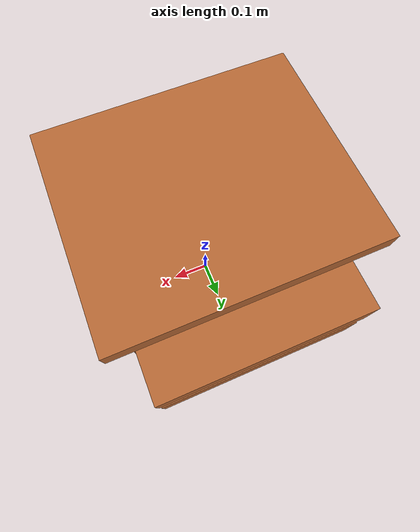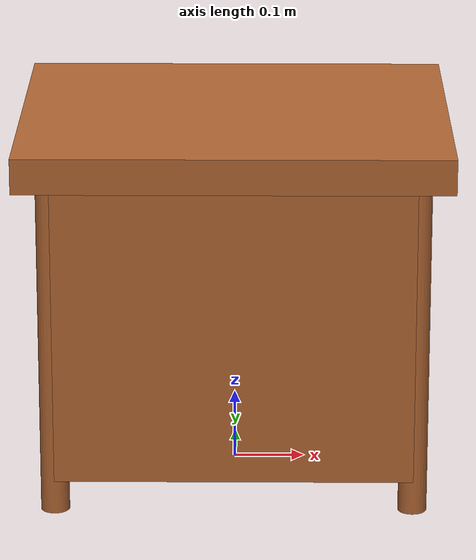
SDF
<?xml version="1.0" ?>
<sdf version="1.6">
  <model name="table_with_drawers">
    <!-- Table top -->
    <link name="table_top">
      <pose>0 0 0.5 0 0 0</pose>
      <visual name="table_visual">
        <geometry>
          <box>
            <size>0.6 0.5 0.05</size>
          </box>
        </geometry>
        <material>
          <ambient>0.4 0.2 0.1 1</ambient>
          <diffuse>0.7 0.4 0.2 1</diffuse>
          <specular>0.1 0.1 0.1 1</specular>
        </material>
      </visual>
      <collision name="table_collision">
        <geometry>
          <box>
            <size>0.6 0.5 0.05</size>
          </box>
        </geometry>
      </collision>
    </link>

    <!-- Drawer 1 -->
    <link name="drawer_1">
      <pose>0 0.15 0.35 0 0 0</pose>  <!-- Moved forward (positive Y) -->
      <visual name="drawer_1_visual">
        <geometry>
          <box>
            <size>0.5 0.4 0.1</size>
          </box>
        </geometry>
        <material>
          <ambient>0.4 0.2 0.1 1</ambient>
          <diffuse>0.7 0.4 0.2 1</diffuse>
          <specular>0.1 0.1 0.1 1</specular>
        </material>
      </visual>
      <collision name="drawer_1_collision">
        <geometry>
          <box>
            <size>0.5 0.4 0.1</size>
          </box>
        </geometry>
      </collision>
    </link>

    <!-- Drawer 2 -->
    <link name="drawer_2">
      <pose>0 0.15 0.2 0 0 0</pose>  <!-- Moved forward (positive Y) -->
      <visual name="drawer_2_visual">
        <geometry>
          <box>
            <size>0.5 0.4 0.1</size>
          </box>
        </geometry>
        <material>
          <ambient>0.4 0.2 0.1 1</ambient>
          <diffuse>0.7 0.4 0.2 1</diffuse>
          <specular>0.1 0.1 0.1 1</specular>
        </material>
      </visual>
      <collision name="drawer_2_collision">
        <geometry>
          <box>
            <size>0.5 0.4 0.1</size>
          </box>
        </geometry>
      </collision>
    </link>

    <!-- Table back panel -->
    <link name="back_panel">
      <pose>0 -0.2 0.275 0 0 0</pose>
      <visual name="back_panel_visual">
        <geometry>
          <box>
            <size>0.5 0.05 0.45</size>
          </box>
        </geometry>
        <material>
          <ambient>0.4 0.2 0.1 1</ambient>
          <diffuse>0.7 0.4 0.2 1</diffuse>
          <specular>0.1 0.1 0.1 1</specular>
        </material>
      </visual>
      <collision name="back_panel_collision">
        <geometry>
          <box>
            <size>0.5 0.05 0.45</size>
          </box>
        </geometry>
      </collision>
    </link>

    <!-- Table side panels -->
    <link name="left_panel">
      <pose>0.225 0 0.275 0 0 0</pose>
      <visual name="left_panel_visual">
        <geometry>
          <box>
            <size>0.05 0.4 0.45</size>
          </box>
        </geometry>
        <material>
          <ambient>0.4 0.2 0.1 1</ambient>
          <diffuse>0.7 0.4 0.2 1</diffuse>
          <specular>0.1 0.1 0.1 1</specular>
        </material>
      </visual>
      <collision name="left_panel_collision">
        <geometry>
          <box>
            <size>0.05 0.4 0.45</size>
          </box>
        </geometry>
      </collision>
    </link>

    <link name="right_panel">
      <pose>-0.225 0 0.275 0 0 0</pose>
      <visual name="right_panel_visual">
        <geometry>
          <box>
            <size>0.05 0.4 0.45</size>
          </box>
        </geometry>
        <material>
          <ambient>0.4 0.2 0.1 1</ambient>
          <diffuse>0.7 0.4 0.2 1</diffuse>
          <specular>0.1 0.1 0.1 1</specular>
        </material>
      </visual>
      <collision name="right_panel_collision">
        <geometry>
          <box>
            <size>0.05 0.4 0.45</size>
          </box>
        </geometry>
      </collision>
    </link>

    <!-- Table legs -->
    <link name="leg1">
      <pose>0.25 0.2 0.25 0 0 0</pose>
      <visual name="leg1_visual">
        <geometry>
          <cylinder>
            <radius>0.02</radius>
            <length>0.5</length>
          </cylinder>
        </geometry>
        <material>
          <ambient>0.4 0.2 0.1 1</ambient>
          <diffuse>0.7 0.4 0.2 1</diffuse>
          <specular>0.1 0.1 0.1 1</specular>
        </material>
      </visual>
      <collision name="leg1_collision">
        <geometry>
          <cylinder>
            <radius>0.02</radius>
            <length>0.5</length>
          </cylinder>
        </geometry>
      </collision>
    </link>

    <link name="leg2">
      <pose>-0.25 0.2 0.25 0 0 0</pose>
      <visual name="leg2_visual">
        <geometry>
          <cylinder>
            <radius>0.02</radius>
            <length>0.5</length>
          </cylinder>
        </geometry>
        <material>
          <ambient>0.4 0.2 0.1 1</ambient>
          <diffuse>0.7 0.4 0.2 1</diffuse>
          <specular>0.1 0.1 0.1 1</specular>
        </material>
      </visual>
      <collision name="leg2_collision">
        <geometry>
          <cylinder>
            <radius>0.02</radius>
            <length>0.5</length>
          </cylinder>
        </geometry>
      </collision>
    </link>

    <link name="leg3">
      <pose>0.25 -0.2 0.25 0 0 0</pose>
      <visual name="leg3_visual">
        <geometry>
          <cylinder>
            <radius>0.02</radius>
            <length>0.5</length>
          </cylinder>
        </geometry>
        <material>
          <ambient>0.4 0.2 0.1 1</ambient>
          <diffuse>0.7 0.4 0.2 1</diffuse>
          <specular>0.1 0.1 0.1 1</specular>
        </material>
      </visual>
      <collision name="leg3_collision">
        <geometry>
          <cylinder>
            <radius>0.02</radius>
            <length>0.5</length>
          </cylinder>
        </geometry>
      </collision>
    </link>

    <link name="leg4">
      <pose>-0.25 -0.2 0.25 0 0 0</pose>
      <visual name="leg4_visual">
        <geometry>
          <cylinder>
            <radius>0.02</radius>
            <length>0.5</length>
          </cylinder>
        </geometry>
        <material>
          <ambient>0.4 0.2 0.1 1</ambient>
          <diffuse>0.7 0.4 0.2 1</diffuse>
          <specular>0.1 0.1 0.1 1</specular>
        </material>
      </visual>
      <collision name="leg4_collision">
        <geometry>
          <cylinder>
            <radius>0.02</radius>
            <length>0.5</length>
          </cylinder>
        </geometry>
      </collision>
    </link>

    <!-- 添加抽屉的滑动关节 -->
    <joint name="drawer_1_joint" type="prismatic">
      <parent>right_panel</parent>
      <child>drawer_1</child>
      <axis>
        <xyz>0 1 0</xyz>
        <limit>
          <lower>0</lower>
          <upper>0.3</upper>
          <effort>50</effort>
          <velocity>0.5</velocity>
        </limit>
      </axis>
      <pose>0 0 0 0 0 0</pose>
    </joint>

    <joint name="drawer_2_joint" type="prismatic">
      <parent>right_panel</parent>
      <child>drawer_2</child>
      <axis>
        <xyz>0 1 0</xyz>
        <limit>
          <lower>0</lower>
          <upper>0.3</upper>
          <effort>50</effort>
          <velocity>0.5</velocity>
        </limit>
      </axis>
      <pose>0 0 0 0 0 0</pose>
    </joint>

    <!-- 固定侧板到桌面 -->
    <joint name="left_panel_joint" type="fixed">
      <parent>table_top</parent>
      <child>left_panel</child>
    </joint>

    <joint name="right_panel_joint" type="fixed">
      <parent>table_top</parent>
      <child>right_panel</child>
    </joint>

    <!-- 固定后板到桌面 -->
    <joint name="back_panel_joint" type="fixed">
      <parent>table_top</parent>
      <child>back_panel</child>
    </joint>

    <!-- 固定桌腿到桌面 -->
    <joint name="leg1_joint" type="fixed">
      <parent>table_top</parent>
      <child>leg1</child>
    </joint>

    <joint name="leg2_joint" type="fixed">
      <parent>table_top</parent>
      <child>leg2</child>
    </joint>

    <joint name="leg3_joint" type="fixed">
      <parent>table_top</parent>
      <child>leg3</child>
    </joint>

    <joint name="leg4_joint" type="fixed">
      <parent>table_top</parent>
      <child>leg4</child>
    </joint>

  </model>
</sdf>
